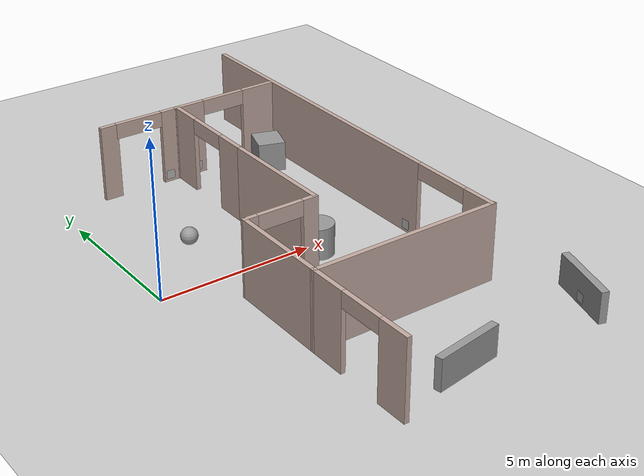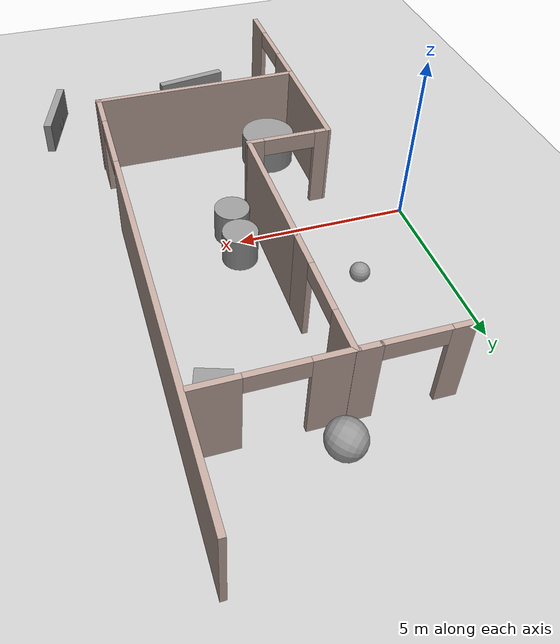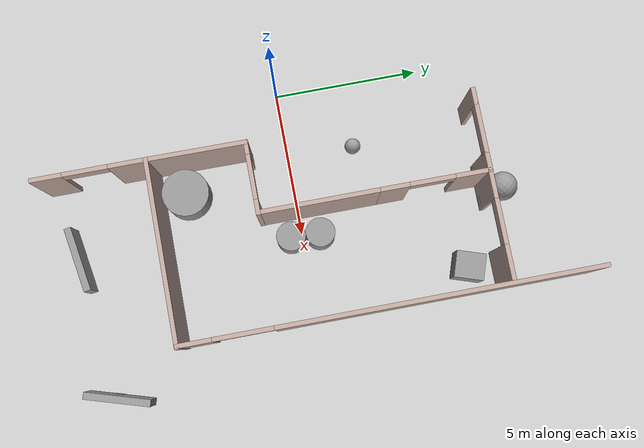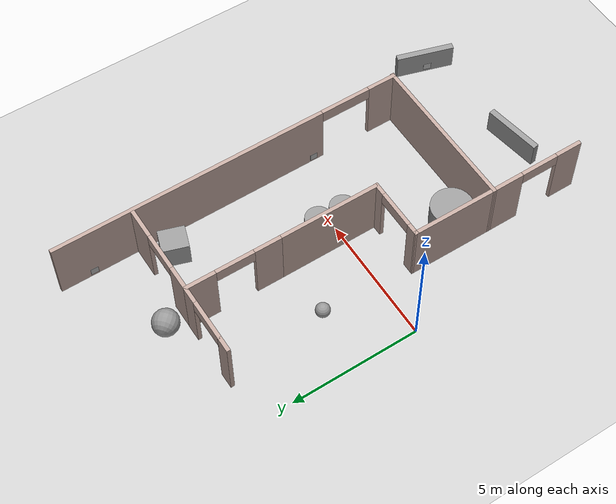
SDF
<sdf version="1.6">
 <world name="default">
  <model name="ground_plane">
   <static>1</static>
   <link name="link">
    <collision name="collision">
     <geometry><plane><normal>0 0 1</normal><size>100 100</size></plane></geometry>
     <surface><friction><ode><mu>100</mu><mu2>50</mu2></ode></friction></surface>
    </collision>
    <visual name="visual">
     <cast_shadows>0</cast_shadows>
     <geometry><plane><normal>0 0 1</normal><size>100 100</size></plane></geometry>
     <material>
      <script><uri>file://media/materials/scripts/gazebo.material</uri><name>Gazebo/Grey</name></script>
     </material>
    </visual>
   </link>
  </model>
  <model name="Apriltag36_11_00001">
   <link name="main">
    <visual name="main_Visual">
     <geometry><box><size>0.3 0.3 0.01</size></box></geometry>
     <material>
      <script>
       <uri>model://Apriltag36_11_00001/materials/scripts</uri>
       <uri>model://Apriltag36_11_00001/materials/textures</uri>
       <name>Apriltag36_11_00001</name>
      </script>
     </material>
    </visual>
   </link>
   <static>1</static>
   <pose>3.97396 6.25837 0.243093 1.5708 -0 0</pose>
  </model>
  <model name="Apriltag36_11_00002">
   <link name="main">
    <visual name="main_Visual">
     <geometry><box><size>0.3 0.3 0.01</size></box></geometry>
     <material>
      <script>
       <uri>model://Apriltag36_11_00002/materials/scripts</uri>
       <uri>model://Apriltag36_11_00002/materials/textures</uri>
       <name>Apriltag36_11_00002</name>
      </script>
     </material>
    </visual>
   </link>
   <static>1</static>
   <pose>7.9597 -0.983528 0.288215 3.14159 -1.57079 3.14159</pose>
  </model>
  <model name="Apriltag36_11_00003">
   <link name="main">
    <visual name="main_Visual">
     <geometry><box><size>0.3 0.3 0.01</size></box></geometry>
     <material>
      <script>
       <uri>model://Apriltag36_11_00003/materials/scripts</uri>
       <uri>model://Apriltag36_11_00003/materials/textures</uri>
       <name>Apriltag36_11_00003</name>
      </script>
     </material>
    </visual>
   </link>
   <static>1</static>
   <pose>5.00792 6.24478 0.257866 1.5708 -0 0</pose>
  </model>
  <model name="unit_cylinder">
   <pose>3.01103 -3.63468 0.499995 6e-06 -6e-06 -1.2e-05</pose>
   <link name="link">
    <inertial>
     <mass>1</mass>
     <inertia><ixx>0.145833</ixx><ixy>0</ixy><ixz>0</ixz><iyy>0.145833</iyy><iyz>0</iyz><izz>0.125</izz></inertia>
    </inertial>
    <collision name="collision">
     <geometry><cylinder><radius>0.80326</radius><length>1</length></cylinder></geometry>
    </collision>
    <visual name="visual">
     <geometry><cylinder><radius>0.80326</radius><length>1</length></cylinder></geometry>
     <material>
      <script><name>Gazebo/Grey</name><uri>file://media/materials/scripts/gazebo.material</uri></script>
     </material>
    </visual>
   </link>
  </model>
  <model name="unit_box_0">
   <pose>7.20629 5.34642 0.5 0 0 -0.320041</pose>
   <link name="link">
    <inertial>
     <mass>1</mass>
     <inertia>
      <ixx>0.166667</ixx>
      <ixy>0</ixy>
      <ixz>0</ixz>
      <iyy>0.166667</iyy>
      <iyz>0</iyz>
      <izz>0.166667</izz>
     </inertia>
    </inertial>
    <collision name="collision"><geometry><box><size>0.905691 1 1</size></box></geometry></collision>
    <visual name="visual">
     <geometry><box><size>0.905691 1 1</size></box></geometry>
     <material>
      <script><name>Gazebo/Grey</name><uri>file://media/materials/scripts/gazebo.material</uri></script>
     </material>
    </visual>
   </link>
  </model>
  <model name="unit_cylinder_0">
   <pose>5.12559 -0.383111 0.499996 5e-06 -2e-06 8.2e-05</pose>
   <link name="link">
    <inertial>
     <mass>1</mass>
     <inertia><ixx>0.145833</ixx><ixy>0</ixy><ixz>0</ixz><iyy>0.145833</iyy><iyz>0</iyz><izz>0.125</izz></inertia>
    </inertial>
    <collision name="collision">
     <geometry><cylinder><radius>0.5</radius><length>1</length></cylinder></geometry>
    </collision>
    <visual name="visual">
     <geometry><cylinder><radius>0.5</radius><length>1</length></cylinder></geometry>
     <material>
      <script><name>Gazebo/Grey</name><uri>file://media/materials/scripts/gazebo.material</uri></script>
     </material>
    </visual>
   </link>
  </model>
  <model name="unit_sphere">
   <pose>4.69867 7.10396 0.5 1.42269 -0.251788 0.775275</pose>
   <link name="link">
    <inertial>
     <mass>1</mass>
     <inertia><ixx>0.1</ixx><ixy>0</ixy><ixz>0</ixz><iyy>0.1</iyy><iyz>0</iyz><izz>0.1</izz></inertia>
    </inertial>
    <collision name="collision"><geometry><sphere><radius>0.5</radius></sphere></geometry></collision>
    <visual name="visual">
     <geometry><sphere><radius>0.5</radius></sphere></geometry>
     <material>
      <script><name>Gazebo/Grey</name><uri>file://media/materials/scripts/gazebo.material</uri></script>
     </material>
    </visual>
   </link>
  </model>
  <model name="unit_sphere_0">
   <pose>2.30869 2.29807 0.27459 0 -0 0</pose>
   <link name="link">
    <inertial>
     <mass>1</mass>
     <inertia><ixx>0.1</ixx><ixy>0</ixy><ixz>0</ixz><iyy>0.1</iyy><iyz>0</iyz><izz>0.1</izz></inertia>
    </inertial>
    <collision name="collision"><geometry><sphere><radius>0.27459</radius></sphere></geometry></collision>
    <visual name="visual">
     <geometry><sphere><radius>0.27459</radius></sphere></geometry>
     <material>
      <script><name>Gazebo/Grey</name><uri>file://media/materials/scripts/gazebo.material</uri></script>
     </material>
    </visual>
   </link>
  </model>
  <model name="unit_box_3">
   <pose>4.5781 -7.57648 0.499969 1e-06 2.8e-05 0.159962</pose>
   <link name="link">
    <inertial>
     <mass>1</mass>
     <inertia>
      <ixx>0.166667</ixx>
      <ixy>0</ixy>
      <ixz>0</ixz>
      <iyy>0.166667</iyy>
      <iyz>0</iyz>
      <izz>0.166667</izz>
     </inertia>
    </inertial>
    <collision name="collision"><geometry><box><size>2.24418 0.240328 1</size></box></geometry></collision>
    <visual name="visual">
     <geometry><box><size>2.24418 0.240328 1</size></box></geometry>
     <material>
      <script><name>Gazebo/Grey</name><uri>file://media/materials/scripts/gazebo.material</uri></script>
     </material>
    </visual>
   </link>
  </model>
  <model name="unit_box_3_clone">
   <pose>9.39191 -6.9847 0.49997 -1e-06 2.7e-05 1.2743</pose>
   <link name="link">
    <inertial>
     <mass>1</mass>
     <inertia>
      <ixx>0.166667</ixx>
      <ixy>0</ixy>
      <ixz>0</ixz>
      <iyy>0.166667</iyy>
      <iyz>0</iyz>
      <izz>0.166667</izz>
     </inertia>
    </inertial>
    <collision name="collision"><geometry><box><size>2.24418 0.240328 1</size></box></geometry></collision>
    <visual name="visual">
     <geometry><box><size>2.24418 0.240328 1</size></box></geometry>
     <material>
      <script><name>Gazebo/Grey</name><uri>file://media/materials/scripts/gazebo.material</uri></script>
     </material>
    </visual>
   </link>
  </model>
  <model name="Apriltag36_11_00008">
   <link name="main">
    <visual name="main_Visual">
     <geometry><box><size>0.3 0.3 0.01</size></box></geometry>
     <material>
      <script>
       <uri>model://Apriltag36_11_00008/materials/scripts</uri>
       <uri>model://Apriltag36_11_00008/materials/textures</uri>
       <name>Apriltag36_11_00008</name>
      </script>
     </material>
    </visual>
   </link>
   <static>1</static>
   <pose>9.23593 -7.03166 0.262671 2.83789 -1.57079 -3.14025</pose>
  </model>
  <model name="Apriltag36_11_00009">
   <link name="main">
    <visual name="main_Visual">
     <geometry><box><size>0.3 0.3 0.01</size></box></geometry>
     <material>
      <script>
       <uri>model://Apriltag36_11_00009/materials/scripts</uri>
       <uri>model://Apriltag36_11_00009/materials/textures</uri>
       <name>Apriltag36_11_00009</name>
      </script>
     </material>
    </visual>
   </link>
   <static>1</static>
   <pose>8.00777 8.10684 0.233187 3.14159 -1.57079 3.14159</pose>
  </model>
  <model name="House3">
   <link name="Wall_0">
    <pose>1.97583 -8.25887 0 0 -0 0</pose>
    <visual name="Wall_0_Visual_0">
     <pose>-6.4191 0 1.25 0 -0 0</pose>
     <geometry><box><size>1.18181 0.15 2.5</size></box></geometry>
     <material>
      <script><uri>file://media/materials/scripts/gazebo.material</uri><name>Gazebo/Grey</name></script>
      <ambient>0.760784 0.662745 0.627451 1</ambient>
     </material>
     <meta><layer>0</layer></meta>
    </visual>
    <visual name="Wall_0_Visual_1">
     <pose>1.5909 0 1.25 0 -0 0</pose>
     <geometry><box><size>10.8382 0.15 2.5</size></box></geometry>
     <material>
      <script><uri>file://media/materials/scripts/gazebo.material</uri><name>Gazebo/Grey</name></script>
      <ambient>0.760784 0.662745 0.627451 1</ambient>
     </material>
     <meta><layer>0</layer></meta>
    </visual>
    <visual name="Wall_0_Visual_2">
     <pose>-4.82819 0 2.25 0 -0 0</pose>
     <geometry><box><size>2 0.15 0.5</size></box></geometry>
     <material>
      <script><uri>file://media/materials/scripts/gazebo.material</uri><name>Gazebo/Grey</name></script>
      <ambient>0.760784 0.662745 0.627451 1</ambient>
     </material>
     <meta><layer>0</layer></meta>
    </visual>
    <collision name="Wall_0_Collision_0">
     <pose>-6.4191 0 1.25 0 -0 0</pose>
     <geometry><box><size>1.18181 0.15 2.5</size></box></geometry>
     <surface>
      <friction>
       <ode><mu>1</mu><mu2>1</mu2><fdir1>0 0 0</fdir1><slip1>0</slip1><slip2>0</slip2></ode>
       <torsional>
        <coefficient>1</coefficient>
        <patch_radius>0</patch_radius>
        <surface_radius>0</surface_radius>
        <use_patch_radius>1</use_patch_radius>
        <ode><slip>0</slip></ode>
       </torsional>
      </friction>
      <bounce><restitution_coefficient>0</restitution_coefficient><threshold>1e+06</threshold></bounce>
      <contact>
       <collide_without_contact>0</collide_without_contact>
       <collide_without_contact_bitmask>1</collide_without_contact_bitmask>
       <collide_bitmask>1</collide_bitmask>
       <ode>
        <soft_cfm>0</soft_cfm>
        <soft_erp>0.2</soft_erp>
        <kp>1e+13</kp>
        <kd>1</kd>
        <max_vel>0.01</max_vel>
        <min_depth>0</min_depth>
       </ode>
       <bullet>
        <split_impulse>1</split_impulse>
        <split_impulse_penetration_threshold>-0.01</split_impulse_penetration_threshold>
        <soft_cfm>0</soft_cfm>
        <soft_erp>0.2</soft_erp>
        <kp>1e+13</kp>
        <kd>1</kd>
       </bullet>
      </contact>
     </surface>
    </collision>
    <collision name="Wall_0_Collision_1">
     <pose>1.5909 0 1.25 0 -0 0</pose>
     <geometry><box><size>10.8382 0.15 2.5</size></box></geometry>
     <surface>
      <friction>
       <ode><mu>1</mu><mu2>1</mu2><fdir1>0 0 0</fdir1><slip1>0</slip1><slip2>0</slip2></ode>
       <torsional>
        <coefficient>1</coefficient>
        <patch_radius>0</patch_radius>
        <surface_radius>0</surface_radius>
        <use_patch_radius>1</use_patch_radius>
        <ode><slip>0</slip></ode>
       </torsional>
      </friction>
      <bounce><restitution_coefficient>0</restitution_coefficient><threshold>1e+06</threshold></bounce>
      <contact>
       <collide_without_contact>0</collide_without_contact>
       <collide_without_contact_bitmask>1</collide_without_contact_bitmask>
       <collide_bitmask>1</collide_bitmask>
       <ode>
        <soft_cfm>0</soft_cfm>
        <soft_erp>0.2</soft_erp>
        <kp>1e+13</kp>
        <kd>1</kd>
        <max_vel>0.01</max_vel>
        <min_depth>0</min_depth>
       </ode>
       <bullet>
        <split_impulse>1</split_impulse>
        <split_impulse_penetration_threshold>-0.01</split_impulse_penetration_threshold>
        <soft_cfm>0</soft_cfm>
        <soft_erp>0.2</soft_erp>
        <kp>1e+13</kp>
        <kd>1</kd>
       </bullet>
      </contact>
     </surface>
    </collision>
    <collision name="Wall_0_Collision_2">
     <pose>-4.82819 0 2.25 0 -0 0</pose>
     <geometry><box><size>2 0.15 0.5</size></box></geometry>
     <surface>
      <friction>
       <ode><mu>1</mu><mu2>1</mu2><fdir1>0 0 0</fdir1><slip1>0</slip1><slip2>0</slip2></ode>
       <torsional>
        <coefficient>1</coefficient>
        <patch_radius>0</patch_radius>
        <surface_radius>0</surface_radius>
        <use_patch_radius>1</use_patch_radius>
        <ode><slip>0</slip></ode>
       </torsional>
      </friction>
      <bounce><restitution_coefficient>0</restitution_coefficient><threshold>1e+06</threshold></bounce>
      <contact>
       <collide_without_contact>0</collide_without_contact>
       <collide_without_contact_bitmask>1</collide_without_contact_bitmask>
       <collide_bitmask>1</collide_bitmask>
       <ode>
        <soft_cfm>0</soft_cfm>
        <soft_erp>0.2</soft_erp>
        <kp>1e+13</kp>
        <kd>1</kd>
        <max_vel>0.01</max_vel>
        <min_depth>0</min_depth>
       </ode>
       <bullet>
        <split_impulse>1</split_impulse>
        <split_impulse_penetration_threshold>-0.01</split_impulse_penetration_threshold>
        <soft_cfm>0</soft_cfm>
        <soft_erp>0.2</soft_erp>
        <kp>1e+13</kp>
        <kd>1</kd>
       </bullet>
      </contact>
     </surface>
    </collision>
   </link>
   <link name="Wall_10">
    <pose>2.08861 -4.55032 0 0 -0 0</pose>
    <inertial>
     <mass>1</mass>
     <inertia><ixx>1</ixx><ixy>0</ixy><ixz>0</ixz><iyy>1</iyy><iyz>0</iyz><izz>1</izz></inertia>
    </inertial>
    <visual name="Wall_10_Visual">
     <pose>-1.8 0 1.25 0 -0 0</pose>
     <geometry><box><size>4 0.15 2.5</size></box></geometry>
     <material>
      <script><uri>file://media/materials/scripts/gazebo.material</uri><name>Gazebo/Grey</name></script>
      <ambient>0.761 0.663 0.627 1</ambient>
      <shader type="vertex"><normal_map>__default__</normal_map></shader>
      <diffuse>0.7 0.7 0.7 1</diffuse>
      <specular>0.01 0.01 0.01 1</specular>
      <emissive>0 0 0 1</emissive>
     </material>
     <meta><layer>0</layer></meta>
    </visual>
    <collision name="Wall_10_Collision">
     <pose>-1.8 0 1.25 0 -0 0</pose>
     <geometry><box><size>4 0.15 2.5</size></box></geometry>
     <surface>
      <friction>
       <ode><mu>1</mu><mu2>1</mu2><fdir1>0 0 0</fdir1><slip1>0</slip1><slip2>0</slip2></ode>
       <torsional>
        <coefficient>1</coefficient>
        <patch_radius>0</patch_radius>
        <surface_radius>0</surface_radius>
        <use_patch_radius>1</use_patch_radius>
        <ode><slip>0</slip></ode>
       </torsional>
      </friction>
      <bounce><restitution_coefficient>0</restitution_coefficient><threshold>1e+06</threshold></bounce>
      <contact>
       <collide_without_contact>0</collide_without_contact>
       <collide_without_contact_bitmask>1</collide_without_contact_bitmask>
       <collide_bitmask>1</collide_bitmask>
       <ode>
        <soft_cfm>0</soft_cfm>
        <soft_erp>0.2</soft_erp>
        <kp>1e+13</kp>
        <kd>1</kd>
        <max_vel>0.01</max_vel>
        <min_depth>0</min_depth>
       </ode>
       <bullet>
        <split_impulse>1</split_impulse>
        <split_impulse_penetration_threshold>-0.01</split_impulse_penetration_threshold>
        <soft_cfm>0</soft_cfm>
        <soft_erp>0.2</soft_erp>
        <kp>1e+13</kp>
        <kd>1</kd>
       </bullet>
      </contact>
     </surface>
    </collision>
   </link>
   <link name="Wall_15">
    <pose>5.88971 -6.3218 0 0 0 -1.5708</pose>
    <visual name="Wall_15_Visual_0">
     <pose>-1.34561 0 1.25 0 -0 0</pose>
     <geometry><box><size>1.05878 0.15 2.5</size></box></geometry>
     <material>
      <script><uri>file://media/materials/scripts/gazebo.material</uri><name>Gazebo/Grey</name></script>
      <ambient>0.760784 0.662745 0.627451 1</ambient>
     </material>
     <meta><layer>0</layer></meta>
    </visual>
    <visual name="Wall_15_Visual_1">
     <pose>1.27939 0 1.25 0 -0 0</pose>
     <geometry><box><size>1.19122 0.15 2.5</size></box></geometry>
     <material>
      <script><uri>file://media/materials/scripts/gazebo.material</uri><name>Gazebo/Grey</name></script>
      <ambient>0.760784 0.662745 0.627451 1</ambient>
     </material>
     <meta><layer>0</layer></meta>
    </visual>
    <visual name="Wall_15_Visual_2">
     <pose>-0.06622 0 2.25 0 -0 0</pose>
     <geometry><box><size>1.5 0.15 0.5</size></box></geometry>
     <material>
      <script><uri>file://media/materials/scripts/gazebo.material</uri><name>Gazebo/Grey</name></script>
      <ambient>0.760784 0.662745 0.627451 1</ambient>
     </material>
     <meta><layer>0</layer></meta>
    </visual>
    <collision name="Wall_15_Collision_0">
     <pose>-1.34561 0 1.25 0 -0 0</pose>
     <geometry><box><size>1.05878 0.15 2.5</size></box></geometry>
     <surface>
      <friction>
       <ode><mu>1</mu><mu2>1</mu2><fdir1>0 0 0</fdir1><slip1>0</slip1><slip2>0</slip2></ode>
       <torsional>
        <coefficient>1</coefficient>
        <patch_radius>0</patch_radius>
        <surface_radius>0</surface_radius>
        <use_patch_radius>1</use_patch_radius>
        <ode><slip>0</slip></ode>
       </torsional>
      </friction>
      <bounce><restitution_coefficient>0</restitution_coefficient><threshold>1e+06</threshold></bounce>
      <contact>
       <collide_without_contact>0</collide_without_contact>
       <collide_without_contact_bitmask>1</collide_without_contact_bitmask>
       <collide_bitmask>1</collide_bitmask>
       <ode>
        <soft_cfm>0</soft_cfm>
        <soft_erp>0.2</soft_erp>
        <kp>1e+13</kp>
        <kd>1</kd>
        <max_vel>0.01</max_vel>
        <min_depth>0</min_depth>
       </ode>
       <bullet>
        <split_impulse>1</split_impulse>
        <split_impulse_penetration_threshold>-0.01</split_impulse_penetration_threshold>
        <soft_cfm>0</soft_cfm>
        <soft_erp>0.2</soft_erp>
        <kp>1e+13</kp>
        <kd>1</kd>
       </bullet>
      </contact>
     </surface>
    </collision>
    <collision name="Wall_15_Collision_1">
     <pose>1.27939 0 1.25 0 -0 0</pose>
     <geometry><box><size>1.19122 0.15 2.5</size></box></geometry>
     <surface>
      <friction>
       <ode><mu>1</mu><mu2>1</mu2><fdir1>0 0 0</fdir1><slip1>0</slip1><slip2>0</slip2></ode>
       <torsional>
        <coefficient>1</coefficient>
        <patch_radius>0</patch_radius>
        <surface_radius>0</surface_radius>
        <use_patch_radius>1</use_patch_radius>
        <ode><slip>0</slip></ode>
       </torsional>
      </friction>
      <bounce><restitution_coefficient>0</restitution_coefficient><threshold>1e+06</threshold></bounce>
      <contact>
       <collide_without_contact>0</collide_without_contact>
       <collide_without_contact_bitmask>1</collide_without_contact_bitmask>
       <collide_bitmask>1</collide_bitmask>
       <ode>
        <soft_cfm>0</soft_cfm>
        <soft_erp>0.2</soft_erp>
        <kp>1e+13</kp>
        <kd>1</kd>
        <max_vel>0.01</max_vel>
        <min_depth>0</min_depth>
       </ode>
       <bullet>
        <split_impulse>1</split_impulse>
        <split_impulse_penetration_threshold>-0.01</split_impulse_penetration_threshold>
        <soft_cfm>0</soft_cfm>
        <soft_erp>0.2</soft_erp>
        <kp>1e+13</kp>
        <kd>1</kd>
       </bullet>
      </contact>
     </surface>
    </collision>
    <collision name="Wall_15_Collision_2">
     <pose>-0.06622 0 2.25 0 -0 0</pose>
     <geometry><box><size>1.5 0.15 0.5</size></box></geometry>
     <surface>
      <friction>
       <ode><mu>1</mu><mu2>1</mu2><fdir1>0 0 0</fdir1><slip1>0</slip1><slip2>0</slip2></ode>
       <torsional>
        <coefficient>1</coefficient>
        <patch_radius>0</patch_radius>
        <surface_radius>0</surface_radius>
        <use_patch_radius>1</use_patch_radius>
        <ode><slip>0</slip></ode>
       </torsional>
      </friction>
      <bounce><restitution_coefficient>0</restitution_coefficient><threshold>1e+06</threshold></bounce>
      <contact>
       <collide_without_contact>0</collide_without_contact>
       <collide_without_contact_bitmask>1</collide_without_contact_bitmask>
       <collide_bitmask>1</collide_bitmask>
       <ode>
        <soft_cfm>0</soft_cfm>
        <soft_erp>0.2</soft_erp>
        <kp>1e+13</kp>
        <kd>1</kd>
        <max_vel>0.01</max_vel>
        <min_depth>0</min_depth>
       </ode>
       <bullet>
        <split_impulse>1</split_impulse>
        <split_impulse_penetration_threshold>-0.01</split_impulse_penetration_threshold>
        <soft_cfm>0</soft_cfm>
        <soft_erp>0.2</soft_erp>
        <kp>1e+13</kp>
        <kd>1</kd>
       </bullet>
      </contact>
     </surface>
    </collision>
   </link>
   <link name="Wall_15_clone">
    <pose>-6.89242 -2.18604 0 0 0 -4e-06</pose>
    <visual name="Wall_15_Visual_1">
     <pose>1.27939 0 1.25 0 -0 0</pose>
     <geometry><box><size>1.19122 0.15 2.5</size></box></geometry>
     <material>
      <script><uri>file://media/materials/scripts/gazebo.material</uri><name>Gazebo/Grey</name></script>
      <ambient>0.760784 0.662745 0.627451 1</ambient>
      <shader type="pixel"/>
     </material>
     <meta><layer>0</layer></meta>
    </visual>
    <visual name="Wall_15_Visual_0">
     <pose>-1.34561 0 1.25 0 -0 0</pose>
     <geometry><box><size>1.05878 0.15 2.5</size></box></geometry>
     <material>
      <script><uri>file://media/materials/scripts/gazebo.material</uri><name>Gazebo/Grey</name></script>
      <ambient>0.760784 0.662745 0.627451 1</ambient>
      <shader type="pixel"/>
     </material>
     <meta><layer>0</layer></meta>
    </visual>
    <visual name="Wall_15_Visual_2">
     <pose>-0.06622 0 2.25 0 -0 0</pose>
     <geometry><box><size>1.5 0.15 0.5</size></box></geometry>
     <material>
      <script><uri>file://media/materials/scripts/gazebo.material</uri><name>Gazebo/Grey</name></script>
      <ambient>0.760784 0.662745 0.627451 1</ambient>
      <shader type="pixel"/>
     </material>
     <meta><layer>0</layer></meta>
    </visual>
    <collision name="Wall_15_Collision_1">
     <pose>1.27939 0 1.25 0 -0 0</pose>
     <geometry><box><size>1.19122 0.15 2.5</size></box></geometry>
     <surface>
      <friction>
       <ode><mu>1</mu><mu2>1</mu2><fdir1>0 0 0</fdir1><slip1>0</slip1><slip2>0</slip2></ode>
       <torsional>
        <coefficient>1</coefficient>
        <patch_radius>0</patch_radius>
        <surface_radius>0</surface_radius>
        <use_patch_radius>1</use_patch_radius>
        <ode><slip>0</slip></ode>
       </torsional>
      </friction>
      <bounce><restitution_coefficient>0</restitution_coefficient><threshold>1e+06</threshold></bounce>
      <contact>
       <collide_without_contact>0</collide_without_contact>
       <collide_without_contact_bitmask>1</collide_without_contact_bitmask>
       <collide_bitmask>1</collide_bitmask>
       <ode>
        <soft_cfm>0</soft_cfm>
        <soft_erp>0.2</soft_erp>
        <kp>1e+13</kp>
        <kd>1</kd>
        <max_vel>0.01</max_vel>
        <min_depth>0</min_depth>
       </ode>
       <bullet>
        <split_impulse>1</split_impulse>
        <split_impulse_penetration_threshold>-0.01</split_impulse_penetration_threshold>
        <soft_cfm>0</soft_cfm>
        <soft_erp>0.2</soft_erp>
        <kp>1e+13</kp>
        <kd>1</kd>
       </bullet>
      </contact>
     </surface>
    </collision>
    <collision name="Wall_15_Collision_2">
     <pose>-0.06622 0 2.25 0 -0 0</pose>
     <geometry><box><size>1.5 0.15 0.5</size></box></geometry>
     <surface>
      <friction>
       <ode><mu>1</mu><mu2>1</mu2><fdir1>0 0 0</fdir1><slip1>0</slip1><slip2>0</slip2></ode>
       <torsional>
        <coefficient>1</coefficient>
        <patch_radius>0</patch_radius>
        <surface_radius>0</surface_radius>
        <use_patch_radius>1</use_patch_radius>
        <ode><slip>0</slip></ode>
       </torsional>
      </friction>
      <bounce><restitution_coefficient>0</restitution_coefficient><threshold>1e+06</threshold></bounce>
      <contact>
       <collide_without_contact>0</collide_without_contact>
       <collide_without_contact_bitmask>1</collide_without_contact_bitmask>
       <collide_bitmask>1</collide_bitmask>
       <ode>
        <soft_cfm>0</soft_cfm>
        <soft_erp>0.2</soft_erp>
        <kp>1e+13</kp>
        <kd>1</kd>
        <max_vel>0.01</max_vel>
        <min_depth>0</min_depth>
       </ode>
       <bullet>
        <split_impulse>1</split_impulse>
        <split_impulse_penetration_threshold>-0.01</split_impulse_penetration_threshold>
        <soft_cfm>0</soft_cfm>
        <soft_erp>0.2</soft_erp>
        <kp>1e+13</kp>
        <kd>1</kd>
       </bullet>
      </contact>
     </surface>
    </collision>
    <collision name="Wall_15_Collision_0">
     <pose>-1.34561 0 1.25 0 -0 0</pose>
     <geometry><box><size>1.05878 0.15 2.5</size></box></geometry>
     <surface>
      <friction>
       <ode><mu>1</mu><mu2>1</mu2><fdir1>0 0 0</fdir1><slip1>0</slip1><slip2>0</slip2></ode>
       <torsional>
        <coefficient>1</coefficient>
        <patch_radius>0</patch_radius>
        <surface_radius>0</surface_radius>
        <use_patch_radius>1</use_patch_radius>
        <ode><slip>0</slip></ode>
       </torsional>
      </friction>
      <bounce><restitution_coefficient>0</restitution_coefficient><threshold>1e+06</threshold></bounce>
      <contact>
       <collide_without_contact>0</collide_without_contact>
       <collide_without_contact_bitmask>1</collide_without_contact_bitmask>
       <collide_bitmask>1</collide_bitmask>
       <ode>
        <soft_cfm>0</soft_cfm>
        <soft_erp>0.2</soft_erp>
        <kp>1e+13</kp>
        <kd>1</kd>
        <max_vel>0.01</max_vel>
        <min_depth>0</min_depth>
       </ode>
       <bullet>
        <split_impulse>1</split_impulse>
        <split_impulse_penetration_threshold>-0.01</split_impulse_penetration_threshold>
        <soft_cfm>0</soft_cfm>
        <soft_erp>0.2</soft_erp>
        <kp>1e+13</kp>
        <kd>1</kd>
       </bullet>
      </contact>
     </surface>
    </collision>
   </link>
   <link name="Wall_15_clone_1">
    <pose>4.07319 -4.55568 0 0 0 -0.003362</pose>
    <visual name="Wall_15_Visual_0">
     <pose>-1.34561 0 1.25 0 -0 0</pose>
     <geometry><box><size>1.05878 0.15 2.5</size></box></geometry>
     <material>
      <script><uri>file://media/materials/scripts/gazebo.material</uri><name>Gazebo/Grey</name></script>
      <ambient>0.760784 0.662745 0.627451 1</ambient>
      <shader type="pixel"/>
     </material>
     <meta><layer>0</layer></meta>
    </visual>
    <visual name="Wall_15_Visual_2">
     <pose>-0.06622 0 2.25 0 -0 0</pose>
     <geometry><box><size>1.5 0.15 0.5</size></box></geometry>
     <material>
      <script><uri>file://media/materials/scripts/gazebo.material</uri><name>Gazebo/Grey</name></script>
      <ambient>0.760784 0.662745 0.627451 1</ambient>
      <shader type="pixel"/>
     </material>
     <meta><layer>0</layer></meta>
    </visual>
    <visual name="Wall_15_Visual_1">
     <pose>1.27939 0 1.25 0 -0 0</pose>
     <geometry><box><size>1.19122 0.15 2.5</size></box></geometry>
     <material>
      <script><uri>file://media/materials/scripts/gazebo.material</uri><name>Gazebo/Grey</name></script>
      <ambient>0.760784 0.662745 0.627451 1</ambient>
      <shader type="pixel"/>
     </material>
     <meta><layer>0</layer></meta>
    </visual>
    <collision name="Wall_15_Collision_0">
     <pose>-1.34561 0 1.25 0 -0 0</pose>
     <geometry><box><size>1.05878 0.15 2.5</size></box></geometry>
     <surface>
      <friction>
       <ode><mu>1</mu><mu2>1</mu2><fdir1>0 0 0</fdir1><slip1>0</slip1><slip2>0</slip2></ode>
       <torsional>
        <coefficient>1</coefficient>
        <patch_radius>0</patch_radius>
        <surface_radius>0</surface_radius>
        <use_patch_radius>1</use_patch_radius>
        <ode><slip>0</slip></ode>
       </torsional>
      </friction>
      <bounce><restitution_coefficient>0</restitution_coefficient><threshold>1e+06</threshold></bounce>
      <contact>
       <collide_without_contact>0</collide_without_contact>
       <collide_without_contact_bitmask>1</collide_without_contact_bitmask>
       <collide_bitmask>1</collide_bitmask>
       <ode>
        <soft_cfm>0</soft_cfm>
        <soft_erp>0.2</soft_erp>
        <kp>1e+13</kp>
        <kd>1</kd>
        <max_vel>0.01</max_vel>
        <min_depth>0</min_depth>
       </ode>
       <bullet>
        <split_impulse>1</split_impulse>
        <split_impulse_penetration_threshold>-0.01</split_impulse_penetration_threshold>
        <soft_cfm>0</soft_cfm>
        <soft_erp>0.2</soft_erp>
        <kp>1e+13</kp>
        <kd>1</kd>
       </bullet>
      </contact>
     </surface>
    </collision>
    <collision name="Wall_15_Collision_1">
     <pose>1.27939 0 1.25 0 -0 0</pose>
     <geometry><box><size>1.19122 0.15 2.5</size></box></geometry>
     <surface>
      <friction>
       <ode><mu>1</mu><mu2>1</mu2><fdir1>0 0 0</fdir1><slip1>0</slip1><slip2>0</slip2></ode>
       <torsional>
        <coefficient>1</coefficient>
        <patch_radius>0</patch_radius>
        <surface_radius>0</surface_radius>
        <use_patch_radius>1</use_patch_radius>
        <ode><slip>0</slip></ode>
       </torsional>
      </friction>
      <bounce><restitution_coefficient>0</restitution_coefficient><threshold>1e+06</threshold></bounce>
      <contact>
       <collide_without_contact>0</collide_without_contact>
       <collide_without_contact_bitmask>1</collide_without_contact_bitmask>
       <collide_bitmask>1</collide_bitmask>
       <ode>
        <soft_cfm>0</soft_cfm>
        <soft_erp>0.2</soft_erp>
        <kp>1e+13</kp>
        <kd>1</kd>
        <max_vel>0.01</max_vel>
        <min_depth>0</min_depth>
       </ode>
       <bullet>
        <split_impulse>1</split_impulse>
        <split_impulse_penetration_threshold>-0.01</split_impulse_penetration_threshold>
        <soft_cfm>0</soft_cfm>
        <soft_erp>0.2</soft_erp>
        <kp>1e+13</kp>
        <kd>1</kd>
       </bullet>
      </contact>
     </surface>
    </collision>
    <collision name="Wall_15_Collision_2">
     <pose>-0.06622 0 2.25 0 -0 0</pose>
     <geometry><box><size>1.5 0.15 0.5</size></box></geometry>
     <surface>
      <friction>
       <ode><mu>1</mu><mu2>1</mu2><fdir1>0 0 0</fdir1><slip1>0</slip1><slip2>0</slip2></ode>
       <torsional>
        <coefficient>1</coefficient>
        <patch_radius>0</patch_radius>
        <surface_radius>0</surface_radius>
        <use_patch_radius>1</use_patch_radius>
        <ode><slip>0</slip></ode>
       </torsional>
      </friction>
      <bounce><restitution_coefficient>0</restitution_coefficient><threshold>1e+06</threshold></bounce>
      <contact>
       <collide_without_contact>0</collide_without_contact>
       <collide_without_contact_bitmask>1</collide_without_contact_bitmask>
       <collide_bitmask>1</collide_bitmask>
       <ode>
        <soft_cfm>0</soft_cfm>
        <soft_erp>0.2</soft_erp>
        <kp>1e+13</kp>
        <kd>1</kd>
        <max_vel>0.01</max_vel>
        <min_depth>0</min_depth>
       </ode>
       <bullet>
        <split_impulse>1</split_impulse>
        <split_impulse_penetration_threshold>-0.01</split_impulse_penetration_threshold>
        <soft_cfm>0</soft_cfm>
        <soft_erp>0.2</soft_erp>
        <kp>1e+13</kp>
        <kd>1</kd>
       </bullet>
      </contact>
     </surface>
    </collision>
   </link>
   <link name="Wall_22">
    <pose>-3.33677 -2.19689 0 0 0 -0.006462</pose>
    <visual name="Wall_22_Visual">
     <pose>0 0 1.25 0 -0 0</pose>
     <geometry><box><size>3.41687 0.15 2.5</size></box></geometry>
     <material>
      <script><uri>file://media/materials/scripts/gazebo.material</uri><name>Gazebo/Grey</name></script>
      <ambient>0.760784 0.662745 0.627451 1</ambient>
     </material>
     <meta><layer>0</layer></meta>
    </visual>
    <collision name="Wall_22_Collision">
     <pose>0 0 1.25 0 -0 0</pose>
     <geometry><box><size>3.41687 0.15 2.5</size></box></geometry>
     <surface>
      <friction>
       <ode><mu>1</mu><mu2>1</mu2><fdir1>0 0 0</fdir1><slip1>0</slip1><slip2>0</slip2></ode>
       <torsional>
        <coefficient>1</coefficient>
        <patch_radius>0</patch_radius>
        <surface_radius>0</surface_radius>
        <use_patch_radius>1</use_patch_radius>
        <ode><slip>0</slip></ode>
       </torsional>
      </friction>
      <bounce><restitution_coefficient>0</restitution_coefficient><threshold>1e+06</threshold></bounce>
      <contact>
       <collide_without_contact>0</collide_without_contact>
       <collide_without_contact_bitmask>1</collide_without_contact_bitmask>
       <collide_bitmask>1</collide_bitmask>
       <ode>
        <soft_cfm>0</soft_cfm>
        <soft_erp>0.2</soft_erp>
        <kp>1e+13</kp>
        <kd>1</kd>
        <max_vel>0.01</max_vel>
        <min_depth>0</min_depth>
       </ode>
       <bullet>
        <split_impulse>1</split_impulse>
        <split_impulse_penetration_threshold>-0.01</split_impulse_penetration_threshold>
        <soft_cfm>0</soft_cfm>
        <soft_erp>0.2</soft_erp>
        <kp>1e+13</kp>
        <kd>1</kd>
       </bullet>
      </contact>
     </surface>
    </collision>
   </link>
   <link name="Wall_7">
    <pose>-4.97017 -5.23634 0 0 0 -1.5708</pose>
    <visual name="Wall_7_Visual">
     <pose>0 0 1.25 0 -0 0</pose>
     <geometry><box><size>6.25 0.15 2.5</size></box></geometry>
     <material>
      <script><uri>file://media/materials/scripts/gazebo.material</uri><name>Gazebo/Grey</name></script>
      <ambient>0.760784 0.662745 0.627451 1</ambient>
     </material>
     <meta><layer>0</layer></meta>
    </visual>
    <collision name="Wall_7_Collision">
     <pose>0 0 1.25 0 -0 0</pose>
     <geometry><box><size>6.25 0.15 2.5</size></box></geometry>
     <surface>
      <friction>
       <ode><mu>1</mu><mu2>1</mu2><fdir1>0 0 0</fdir1><slip1>0</slip1><slip2>0</slip2></ode>
       <torsional>
        <coefficient>1</coefficient>
        <patch_radius>0</patch_radius>
        <surface_radius>0</surface_radius>
        <use_patch_radius>1</use_patch_radius>
        <ode><slip>0</slip></ode>
       </torsional>
      </friction>
      <bounce><restitution_coefficient>0</restitution_coefficient><threshold>1e+06</threshold></bounce>
      <contact>
       <collide_without_contact>0</collide_without_contact>
       <collide_without_contact_bitmask>1</collide_without_contact_bitmask>
       <collide_bitmask>1</collide_bitmask>
       <ode>
        <soft_cfm>0</soft_cfm>
        <soft_erp>0.2</soft_erp>
        <kp>1e+13</kp>
        <kd>1</kd>
        <max_vel>0.01</max_vel>
        <min_depth>0</min_depth>
       </ode>
       <bullet>
        <split_impulse>1</split_impulse>
        <split_impulse_penetration_threshold>-0.01</split_impulse_penetration_threshold>
        <soft_cfm>0</soft_cfm>
        <soft_erp>0.2</soft_erp>
        <kp>1e+13</kp>
        <kd>1</kd>
       </bullet>
      </contact>
     </surface>
    </collision>
   </link>
   <link name="Wall_9">
    <pose>-1.70337 -3.38245 0 0 0 -1.5708</pose>
    <visual name="Wall_9_Visual_0">
     <pose>-1.00831 0 1.25 0 -0 0</pose>
     <geometry><box><size>0.483376 0.15 2.5</size></box></geometry>
     <material>
      <script><uri>file://media/materials/scripts/gazebo.material</uri><name>Gazebo/Grey</name></script>
      <ambient>0.760784 0.662745 0.627451 1</ambient>
     </material>
     <meta><layer>0</layer></meta>
    </visual>
    <visual name="Wall_9_Visual_1">
     <pose>0.991688 0 1.25 0 -0 0</pose>
     <geometry><box><size>0.516624 0.15 2.5</size></box></geometry>
     <material>
      <script><uri>file://media/materials/scripts/gazebo.material</uri><name>Gazebo/Grey</name></script>
      <ambient>0.760784 0.662745 0.627451 1</ambient>
     </material>
     <meta><layer>0</layer></meta>
    </visual>
    <visual name="Wall_9_Visual_2">
     <pose>-0.016624 0 2.25 0 -0 0</pose>
     <geometry><box><size>1.5 0.15 0.5</size></box></geometry>
     <material>
      <script><uri>file://media/materials/scripts/gazebo.material</uri><name>Gazebo/Grey</name></script>
      <ambient>0.760784 0.662745 0.627451 1</ambient>
     </material>
     <meta><layer>0</layer></meta>
    </visual>
    <collision name="Wall_9_Collision_0">
     <pose>-1.00831 0 1.25 0 -0 0</pose>
     <geometry><box><size>0.483376 0.15 2.5</size></box></geometry>
     <surface>
      <friction>
       <ode><mu>1</mu><mu2>1</mu2><fdir1>0 0 0</fdir1><slip1>0</slip1><slip2>0</slip2></ode>
       <torsional>
        <coefficient>1</coefficient>
        <patch_radius>0</patch_radius>
        <surface_radius>0</surface_radius>
        <use_patch_radius>1</use_patch_radius>
        <ode><slip>0</slip></ode>
       </torsional>
      </friction>
      <bounce><restitution_coefficient>0</restitution_coefficient><threshold>1e+06</threshold></bounce>
      <contact>
       <collide_without_contact>0</collide_without_contact>
       <collide_without_contact_bitmask>1</collide_without_contact_bitmask>
       <collide_bitmask>1</collide_bitmask>
       <ode>
        <soft_cfm>0</soft_cfm>
        <soft_erp>0.2</soft_erp>
        <kp>1e+13</kp>
        <kd>1</kd>
        <max_vel>0.01</max_vel>
        <min_depth>0</min_depth>
       </ode>
       <bullet>
        <split_impulse>1</split_impulse>
        <split_impulse_penetration_threshold>-0.01</split_impulse_penetration_threshold>
        <soft_cfm>0</soft_cfm>
        <soft_erp>0.2</soft_erp>
        <kp>1e+13</kp>
        <kd>1</kd>
       </bullet>
      </contact>
     </surface>
    </collision>
    <collision name="Wall_9_Collision_1">
     <pose>0.991688 0 1.25 0 -0 0</pose>
     <geometry><box><size>0.516624 0.15 2.5</size></box></geometry>
     <surface>
      <friction>
       <ode><mu>1</mu><mu2>1</mu2><fdir1>0 0 0</fdir1><slip1>0</slip1><slip2>0</slip2></ode>
       <torsional>
        <coefficient>1</coefficient>
        <patch_radius>0</patch_radius>
        <surface_radius>0</surface_radius>
        <use_patch_radius>1</use_patch_radius>
        <ode><slip>0</slip></ode>
       </torsional>
      </friction>
      <bounce><restitution_coefficient>0</restitution_coefficient><threshold>1e+06</threshold></bounce>
      <contact>
       <collide_without_contact>0</collide_without_contact>
       <collide_without_contact_bitmask>1</collide_without_contact_bitmask>
       <collide_bitmask>1</collide_bitmask>
       <ode>
        <soft_cfm>0</soft_cfm>
        <soft_erp>0.2</soft_erp>
        <kp>1e+13</kp>
        <kd>1</kd>
        <max_vel>0.01</max_vel>
        <min_depth>0</min_depth>
       </ode>
       <bullet>
        <split_impulse>1</split_impulse>
        <split_impulse_penetration_threshold>-0.01</split_impulse_penetration_threshold>
        <soft_cfm>0</soft_cfm>
        <soft_erp>0.2</soft_erp>
        <kp>1e+13</kp>
        <kd>1</kd>
       </bullet>
      </contact>
     </surface>
    </collision>
    <collision name="Wall_9_Collision_2">
     <pose>-0.016624 0 2.25 0 -0 0</pose>
     <geometry><box><size>1.5 0.15 0.5</size></box></geometry>
     <surface>
      <friction>
       <ode><mu>1</mu><mu2>1</mu2><fdir1>0 0 0</fdir1><slip1>0</slip1><slip2>0</slip2></ode>
       <torsional>
        <coefficient>1</coefficient>
        <patch_radius>0</patch_radius>
        <surface_radius>0</surface_radius>
        <use_patch_radius>1</use_patch_radius>
        <ode><slip>0</slip></ode>
       </torsional>
      </friction>
      <bounce><restitution_coefficient>0</restitution_coefficient><threshold>1e+06</threshold></bounce>
      <contact>
       <collide_without_contact>0</collide_without_contact>
       <collide_without_contact_bitmask>1</collide_without_contact_bitmask>
       <collide_bitmask>1</collide_bitmask>
       <ode>
        <soft_cfm>0</soft_cfm>
        <soft_erp>0.2</soft_erp>
        <kp>1e+13</kp>
        <kd>1</kd>
        <max_vel>0.01</max_vel>
        <min_depth>0</min_depth>
       </ode>
       <bullet>
        <split_impulse>1</split_impulse>
        <split_impulse_penetration_threshold>-0.01</split_impulse_penetration_threshold>
        <soft_cfm>0</soft_cfm>
        <soft_erp>0.2</soft_erp>
        <kp>1e+13</kp>
        <kd>1</kd>
       </bullet>
      </contact>
     </surface>
    </collision>
   </link>
   <link name="Wall_9_clone">
    <pose>5.89578 -3.22892 0 0 0 -1.5708</pose>
    <inertial>
     <inertia><ixx>0</ixx><ixy>0</ixy><ixz>0</ixz><iyy>0</iyy><iyz>0</iyz><izz>0</izz></inertia>
     <mass>0</mass>
    </inertial>
    <visual name="Wall_9_Visual_0">
     <pose>-1.15 0 1.25 0 -0 0</pose>
     <geometry><box><size>0.592651 0.15 2.5</size></box></geometry>
     <material>
      <script><uri>file://media/materials/scripts/gazebo.material</uri><name>Gazebo/Grey</name></script>
      <ambient>0.761 0.663 0.627 1</ambient>
      <shader type="vertex"><normal_map>__default__</normal_map></shader>
      <diffuse>0.7 0.7 0.7 1</diffuse>
      <specular>0.01 0.01 0.01 1</specular>
      <emissive>0 0 0 1</emissive>
     </material>
     <meta><layer>0</layer></meta>
    </visual>
    <visual name="Wall_9_Visual_1">
     <pose>1.02 0 1.25 0 -0 0</pose>
     <geometry><box><size>0.633414 0.15 2.5</size></box></geometry>
     <material>
      <script><uri>file://media/materials/scripts/gazebo.material</uri><name>Gazebo/Grey</name></script>
      <ambient>0.761 0.663 0.627 1</ambient>
      <shader type="vertex"><normal_map>__default__</normal_map></shader>
      <diffuse>0.7 0.7 0.7 1</diffuse>
      <specular>0.01 0.01 0.01 1</specular>
      <emissive>0 0 0 1</emissive>
     </material>
     <meta><layer>0</layer></meta>
    </visual>
    <visual name="Wall_9_Visual_2">
     <pose>-0.07 0 2.25 0 -0 0</pose>
     <geometry><box><size>1.67 0.15 0.5</size></box></geometry>
     <material>
      <script><uri>file://media/materials/scripts/gazebo.material</uri><name>Gazebo/Grey</name></script>
      <ambient>0.761 0.663 0.627 1</ambient>
      <shader type="vertex"><normal_map>__default__</normal_map></shader>
      <diffuse>0.7 0.7 0.7 1</diffuse>
      <specular>0.01 0.01 0.01 1</specular>
      <emissive>0 0 0 1</emissive>
     </material>
     <meta><layer>0</layer></meta>
    </visual>
    <collision name="Wall_9_Collision_0">
     <pose>-1.15 0 1.25 0 -0 0</pose>
     <geometry><box><size>0.592651 0.15 2.5</size></box></geometry>
     <surface>
      <friction>
       <ode><mu>1</mu><mu2>1</mu2><fdir1>0 0 0</fdir1><slip1>0</slip1><slip2>0</slip2></ode>
       <torsional>
        <coefficient>1</coefficient>
        <patch_radius>0</patch_radius>
        <surface_radius>0</surface_radius>
        <use_patch_radius>1</use_patch_radius>
        <ode><slip>0</slip></ode>
       </torsional>
      </friction>
      <bounce><restitution_coefficient>0</restitution_coefficient><threshold>1e+06</threshold></bounce>
      <contact>
       <collide_without_contact>0</collide_without_contact>
       <collide_without_contact_bitmask>1</collide_without_contact_bitmask>
       <collide_bitmask>1</collide_bitmask>
       <ode>
        <soft_cfm>0</soft_cfm>
        <soft_erp>0.2</soft_erp>
        <kp>1e+13</kp>
        <kd>1</kd>
        <max_vel>0.01</max_vel>
        <min_depth>0</min_depth>
       </ode>
       <bullet>
        <split_impulse>1</split_impulse>
        <split_impulse_penetration_threshold>-0.01</split_impulse_penetration_threshold>
        <soft_cfm>0</soft_cfm>
        <soft_erp>0.2</soft_erp>
        <kp>1e+13</kp>
        <kd>1</kd>
       </bullet>
      </contact>
     </surface>
    </collision>
    <collision name="Wall_9_Collision_1">
     <pose>1.02 0 1.25 0 -0 0</pose>
     <geometry><box><size>0.633414 0.15 2.5</size></box></geometry>
     <surface>
      <friction>
       <ode><mu>1</mu><mu2>1</mu2><fdir1>0 0 0</fdir1><slip1>0</slip1><slip2>0</slip2></ode>
       <torsional>
        <coefficient>1</coefficient>
        <patch_radius>0</patch_radius>
        <surface_radius>0</surface_radius>
        <use_patch_radius>1</use_patch_radius>
        <ode><slip>0</slip></ode>
       </torsional>
      </friction>
      <bounce><restitution_coefficient>0</restitution_coefficient><threshold>1e+06</threshold></bounce>
      <contact>
       <collide_without_contact>0</collide_without_contact>
       <collide_without_contact_bitmask>1</collide_without_contact_bitmask>
       <collide_bitmask>1</collide_bitmask>
       <ode>
        <soft_cfm>0</soft_cfm>
        <soft_erp>0.2</soft_erp>
        <kp>1e+13</kp>
        <kd>1</kd>
        <max_vel>0.01</max_vel>
        <min_depth>0</min_depth>
       </ode>
       <bullet>
        <split_impulse>1</split_impulse>
        <split_impulse_penetration_threshold>-0.01</split_impulse_penetration_threshold>
        <soft_cfm>0</soft_cfm>
        <soft_erp>0.2</soft_erp>
        <kp>1e+13</kp>
        <kd>1</kd>
       </bullet>
      </contact>
     </surface>
    </collision>
    <collision name="Wall_9_Collision_2">
     <pose>-0.07 0 2.25 0 -0 0</pose>
     <geometry><box><size>1.67 0.15 0.5</size></box></geometry>
     <surface>
      <friction>
       <ode><mu>1</mu><mu2>1</mu2><fdir1>0 0 0</fdir1><slip1>0</slip1><slip2>0</slip2></ode>
       <torsional>
        <coefficient>1</coefficient>
        <patch_radius>0</patch_radius>
        <surface_radius>0</surface_radius>
        <use_patch_radius>1</use_patch_radius>
        <ode><slip>0</slip></ode>
       </torsional>
      </friction>
      <bounce><restitution_coefficient>0</restitution_coefficient><threshold>1e+06</threshold></bounce>
      <contact>
       <collide_without_contact>0</collide_without_contact>
       <collide_without_contact_bitmask>1</collide_without_contact_bitmask>
       <collide_bitmask>1</collide_bitmask>
       <ode>
        <soft_cfm>0</soft_cfm>
        <soft_erp>0.2</soft_erp>
        <kp>1e+13</kp>
        <kd>1</kd>
        <max_vel>0.01</max_vel>
        <min_depth>0</min_depth>
       </ode>
       <bullet>
        <split_impulse>1</split_impulse>
        <split_impulse_penetration_threshold>-0.01</split_impulse_penetration_threshold>
        <soft_cfm>0</soft_cfm>
        <soft_erp>0.2</soft_erp>
        <kp>1e+13</kp>
        <kd>1</kd>
       </bullet>
      </contact>
     </surface>
    </collision>
   </link>
   <static>1</static>
   <pose>-0.171553 0.43373 0 0 -0 1.5708</pose>
  </model>
  <model name="unit_cylinder_0_clone">
   <pose>5.1756 0.615656 0.499994 -4e-06 3e-06 0.000149</pose>
   <link name="link">
    <inertial>
     <mass>1</mass>
     <inertia><ixx>0.145833</ixx><ixy>0</ixy><ixz>0</ixz><iyy>0.145833</iyy><iyz>0</iyz><izz>0.125</izz></inertia>
    </inertial>
    <collision name="collision">
     <geometry><cylinder><radius>0.5</radius><length>1</length></cylinder></geometry>
    </collision>
    <visual name="visual">
     <geometry><cylinder><radius>0.5</radius><length>1</length></cylinder></geometry>
     <material>
      <script><name>Gazebo/Grey</name><uri>file://media/materials/scripts/gazebo.material</uri></script>
     </material>
    </visual>
   </link>
  </model>
 </world>
</sdf>
